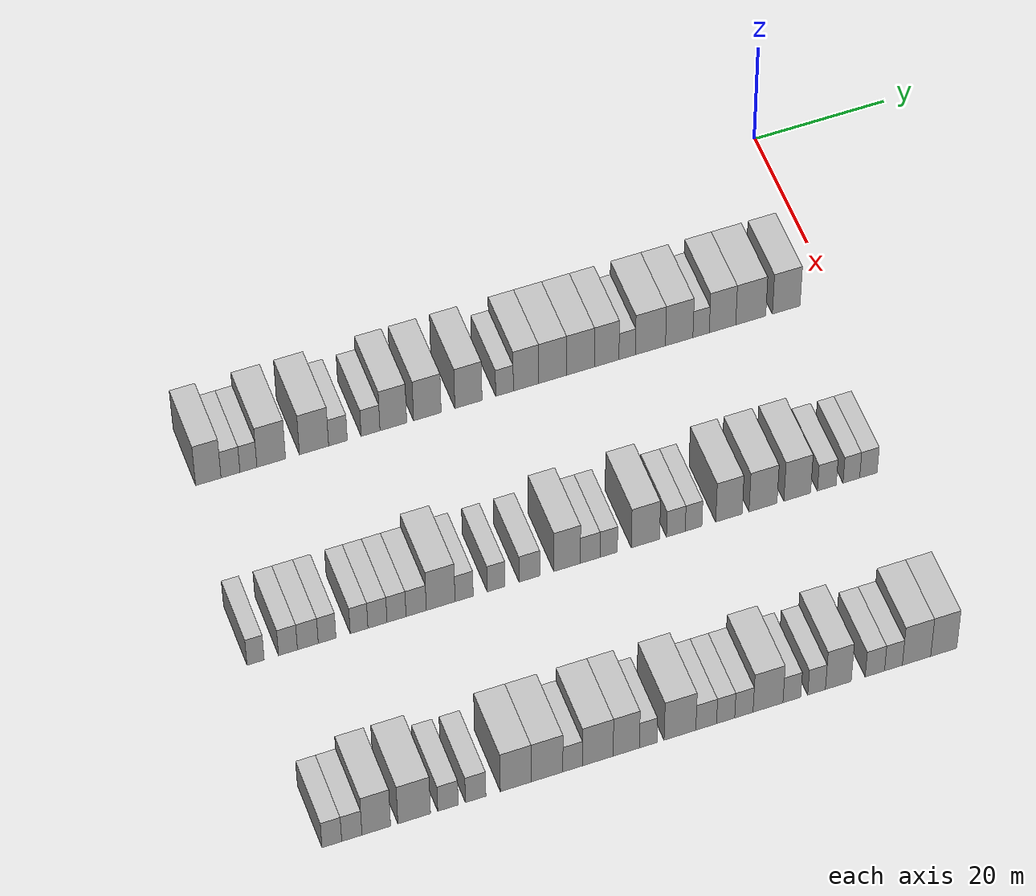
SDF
<sdf version="1.6">
 <world name="default">
  <model name="building_50">
   <static>1</static>
   <pose>25.0000 -91.5804 0 0.000000 0.000000 0.000000</pose>
   <link name="link">
    <pose>0 0 4.50 0 0 0</pose>
    <collision name="collision"><geometry><box><size>10.0000 3.6291 9.0000</size></box></geometry></collision>
    <visual name="visual">
     <cast_shadows>0</cast_shadows>
     <geometry><box><size>10.0000 3.6291 9.0000</size></box></geometry>
     <material>
      <script>
       <uri>model://HANNAS_wall/materials/scripts</uri>
       <uri>model://HANNAS_wall/materials/textures</uri>
       <name>vrc/HANNAS_wall</name>
      </script>
     </material>
    </visual>
   </link>
  </model>
  <model name="building_51">
   <static>1</static>
   <pose>25.0000 -88.4099 0 0.000000 0.000000 0.000000</pose>
   <link name="link">
    <pose>0 0 3.00 0 0 0</pose>
    <collision name="collision"><geometry><box><size>10.0000 2.7119 6.0000</size></box></geometry></collision>
    <visual name="visual">
     <cast_shadows>0</cast_shadows>
     <geometry><box><size>10.0000 2.7119 6.0000</size></box></geometry>
     <material>
      <script>
       <uri>model://HANNAS_wall/materials/scripts</uri>
       <uri>model://HANNAS_wall/materials/textures</uri>
       <name>vrc/HANNAS_wall</name>
      </script>
     </material>
    </visual>
   </link>
  </model>
  <model name="building_52">
   <static>1</static>
   <pose>25.0000 -85.8436 0 0.000000 0.000000 0.000000</pose>
   <link name="link">
    <pose>0 0 3.00 0 0 0</pose>
    <collision name="collision"><geometry><box><size>10.0000 2.4205 6.0000</size></box></geometry></collision>
    <visual name="visual">
     <cast_shadows>0</cast_shadows>
     <geometry><box><size>10.0000 2.4205 6.0000</size></box></geometry>
     <material>
      <script>
       <uri>model://HANNAS_wall/materials/scripts</uri>
       <uri>model://HANNAS_wall/materials/textures</uri>
       <name>vrc/HANNAS_wall</name>
      </script>
     </material>
    </visual>
   </link>
  </model>
  <model name="building_53">
   <static>1</static>
   <pose>25.0000 -82.5803 0 0.000000 0.000000 0.000000</pose>
   <link name="link">
    <pose>0 0 4.50 0 0 0</pose>
    <collision name="collision"><geometry><box><size>10.0000 4.1062 9.0000</size></box></geometry></collision>
    <visual name="visual">
     <cast_shadows>0</cast_shadows>
     <geometry><box><size>10.0000 4.1062 9.0000</size></box></geometry>
     <material>
      <script>
       <uri>model://HANNAS_wall/materials/scripts</uri>
       <uri>model://HANNAS_wall/materials/textures</uri>
       <name>vrc/HANNAS_wall</name>
      </script>
     </material>
    </visual>
   </link>
  </model>
  <model name="building_54">
   <static>1</static>
   <pose>25.0000 -76.4303 0 0.000000 0.000000 0.000000</pose>
   <link name="link">
    <pose>0 0 4.50 0 0 0</pose>
    <collision name="collision"><geometry><box><size>10.0000 4.1938 9.0000</size></box></geometry></collision>
    <visual name="visual">
     <cast_shadows>0</cast_shadows>
     <geometry><box><size>10.0000 4.1938 9.0000</size></box></geometry>
     <material>
      <script>
       <uri>model://HANNAS_wall/materials/scripts</uri>
       <uri>model://HANNAS_wall/materials/textures</uri>
       <name>vrc/HANNAS_wall</name>
      </script>
     </material>
    </visual>
   </link>
  </model>
  <model name="building_55">
   <static>1</static>
   <pose>25.0000 -72.9866 0 0.000000 0.000000 0.000000</pose>
   <link name="link">
    <pose>0 0 3.00 0 0 0</pose>
    <collision name="collision"><geometry><box><size>10.0000 2.6935 6.0000</size></box></geometry></collision>
    <visual name="visual">
     <cast_shadows>0</cast_shadows>
     <geometry><box><size>10.0000 2.6935 6.0000</size></box></geometry>
     <material>
      <script>
       <uri>model://HANNAS_wall/materials/scripts</uri>
       <uri>model://HANNAS_wall/materials/textures</uri>
       <name>vrc/HANNAS_wall</name>
      </script>
     </material>
    </visual>
   </link>
  </model>
  <model name="building_56">
   <static>1</static>
   <pose>25.0000 -68.2763 0 0.000000 0.000000 0.000000</pose>
   <link name="link">
    <pose>0 0 3.00 0 0 0</pose>
    <collision name="collision"><geometry><box><size>10.0000 2.7271 6.0000</size></box></geometry></collision>
    <visual name="visual">
     <cast_shadows>0</cast_shadows>
     <geometry><box><size>10.0000 2.7271 6.0000</size></box></geometry>
     <material>
      <script>
       <uri>model://HANNAS_wall/materials/scripts</uri>
       <uri>model://HANNAS_wall/materials/textures</uri>
       <name>vrc/HANNAS_wall</name>
      </script>
     </material>
    </visual>
   </link>
  </model>
  <model name="building_57">
   <static>1</static>
   <pose>25.0000 -64.9785 0 0.000000 0.000000 0.000000</pose>
   <link name="link">
    <pose>0 0 4.50 0 0 0</pose>
    <collision name="collision"><geometry><box><size>10.0000 3.8686 9.0000</size></box></geometry></collision>
    <visual name="visual">
     <cast_shadows>0</cast_shadows>
     <geometry><box><size>10.0000 3.8686 9.0000</size></box></geometry>
     <material>
      <script>
       <uri>model://HANNAS_wall/materials/scripts</uri>
       <uri>model://HANNAS_wall/materials/textures</uri>
       <name>vrc/HANNAS_wall</name>
      </script>
     </material>
    </visual>
   </link>
  </model>
  <model name="building_58">
   <static>1</static>
   <pose>25.0000 -60.0422 0 0.000000 0.000000 0.000000</pose>
   <link name="link">
    <pose>0 0 4.50 0 0 0</pose>
    <collision name="collision"><geometry><box><size>10.0000 4.0040 9.0000</size></box></geometry></collision>
    <visual name="visual">
     <cast_shadows>0</cast_shadows>
     <geometry><box><size>10.0000 4.0040 9.0000</size></box></geometry>
     <material>
      <script>
       <uri>model://HANNAS_wall/materials/scripts</uri>
       <uri>model://HANNAS_wall/materials/textures</uri>
       <name>vrc/HANNAS_wall</name>
      </script>
     </material>
    </visual>
   </link>
  </model>
  <model name="building_59">
   <static>1</static>
   <pose>25.0000 -54.0618 0 0.000000 0.000000 0.000000</pose>
   <link name="link">
    <pose>0 0 4.50 0 0 0</pose>
    <collision name="collision"><geometry><box><size>10.0000 3.9568 9.0000</size></box></geometry></collision>
    <visual name="visual">
     <cast_shadows>0</cast_shadows>
     <geometry><box><size>10.0000 3.9568 9.0000</size></box></geometry>
     <material>
      <script>
       <uri>model://HANNAS_wall/materials/scripts</uri>
       <uri>model://HANNAS_wall/materials/textures</uri>
       <name>vrc/HANNAS_wall</name>
      </script>
     </material>
    </visual>
   </link>
  </model>
  <model name="building_60">
   <static>1</static>
   <pose>25.0000 -48.7931 0 0.000000 0.000000 0.000000</pose>
   <link name="link">
    <pose>0 0 3.00 0 0 0</pose>
    <collision name="collision"><geometry><box><size>10.0000 2.5806 6.0000</size></box></geometry></collision>
    <visual name="visual">
     <cast_shadows>0</cast_shadows>
     <geometry><box><size>10.0000 2.5806 6.0000</size></box></geometry>
     <material>
      <script>
       <uri>model://HANNAS_wall/materials/scripts</uri>
       <uri>model://HANNAS_wall/materials/textures</uri>
       <name>vrc/HANNAS_wall</name>
      </script>
     </material>
    </visual>
   </link>
  </model>
  <model name="building_61">
   <static>1</static>
   <pose>25.0000 -45.6445 0 0.000000 0.000000 0.000000</pose>
   <link name="link">
    <pose>0 0 4.50 0 0 0</pose>
    <collision name="collision"><geometry><box><size>10.0000 3.7167 9.0000</size></box></geometry></collision>
    <visual name="visual">
     <cast_shadows>0</cast_shadows>
     <geometry><box><size>10.0000 3.7167 9.0000</size></box></geometry>
     <material>
      <script>
       <uri>model://HANNAS_wall/materials/scripts</uri>
       <uri>model://HANNAS_wall/materials/textures</uri>
       <name>vrc/HANNAS_wall</name>
      </script>
     </material>
    </visual>
   </link>
  </model>
  <model name="building_62">
   <static>1</static>
   <pose>25.0000 -41.7381 0 0.000000 0.000000 0.000000</pose>
   <link name="link">
    <pose>0 0 4.50 0 0 0</pose>
    <collision name="collision"><geometry><box><size>10.0000 4.0960 9.0000</size></box></geometry></collision>
    <visual name="visual">
     <cast_shadows>0</cast_shadows>
     <geometry><box><size>10.0000 4.0960 9.0000</size></box></geometry>
     <material>
      <script>
       <uri>model://HANNAS_wall/materials/scripts</uri>
       <uri>model://HANNAS_wall/materials/textures</uri>
       <name>vrc/HANNAS_wall</name>
      </script>
     </material>
    </visual>
   </link>
  </model>
  <model name="building_63">
   <static>1</static>
   <pose>25.0000 -37.6534 0 0.000000 0.000000 0.000000</pose>
   <link name="link">
    <pose>0 0 4.50 0 0 0</pose>
    <collision name="collision"><geometry><box><size>10.0000 4.0736 9.0000</size></box></geometry></collision>
    <visual name="visual">
     <cast_shadows>0</cast_shadows>
     <geometry><box><size>10.0000 4.0736 9.0000</size></box></geometry>
     <material>
      <script>
       <uri>model://HANNAS_wall/materials/scripts</uri>
       <uri>model://HANNAS_wall/materials/textures</uri>
       <name>vrc/HANNAS_wall</name>
      </script>
     </material>
    </visual>
   </link>
  </model>
  <model name="building_64">
   <static>1</static>
   <pose>25.0000 -33.8001 0 0.000000 0.000000 0.000000</pose>
   <link name="link">
    <pose>0 0 4.50 0 0 0</pose>
    <collision name="collision"><geometry><box><size>10.0000 3.6331 9.0000</size></box></geometry></collision>
    <visual name="visual">
     <cast_shadows>0</cast_shadows>
     <geometry><box><size>10.0000 3.6331 9.0000</size></box></geometry>
     <material>
      <script>
       <uri>model://HANNAS_wall/materials/scripts</uri>
       <uri>model://HANNAS_wall/materials/textures</uri>
       <name>vrc/HANNAS_wall</name>
      </script>
     </material>
    </visual>
   </link>
  </model>
  <model name="building_65">
   <static>1</static>
   <pose>25.0000 -30.7727 0 0.000000 0.000000 0.000000</pose>
   <link name="link">
    <pose>0 0 3.00 0 0 0</pose>
    <collision name="collision"><geometry><box><size>10.0000 2.4218 6.0000</size></box></geometry></collision>
    <visual name="visual">
     <cast_shadows>0</cast_shadows>
     <geometry><box><size>10.0000 2.4218 6.0000</size></box></geometry>
     <material>
      <script>
       <uri>model://HANNAS_wall/materials/scripts</uri>
       <uri>model://HANNAS_wall/materials/textures</uri>
       <name>vrc/HANNAS_wall</name>
      </script>
     </material>
    </visual>
   </link>
  </model>
  <model name="building_66">
   <static>1</static>
   <pose>25.0000 -27.3282 0 0.000000 0.000000 0.000000</pose>
   <link name="link">
    <pose>0 0 4.50 0 0 0</pose>
    <collision name="collision"><geometry><box><size>10.0000 4.4672 9.0000</size></box></geometry></collision>
    <visual name="visual">
     <cast_shadows>0</cast_shadows>
     <geometry><box><size>10.0000 4.4672 9.0000</size></box></geometry>
     <material>
      <script>
       <uri>model://HANNAS_wall/materials/scripts</uri>
       <uri>model://HANNAS_wall/materials/textures</uri>
       <name>vrc/HANNAS_wall</name>
      </script>
     </material>
    </visual>
   </link>
  </model>
  <model name="building_67">
   <static>1</static>
   <pose>25.0000 -23.0591 0 0.000000 0.000000 0.000000</pose>
   <link name="link">
    <pose>0 0 4.50 0 0 0</pose>
    <collision name="collision"><geometry><box><size>10.0000 4.0710 9.0000</size></box></geometry></collision>
    <visual name="visual">
     <cast_shadows>0</cast_shadows>
     <geometry><box><size>10.0000 4.0710 9.0000</size></box></geometry>
     <material>
      <script>
       <uri>model://HANNAS_wall/materials/scripts</uri>
       <uri>model://HANNAS_wall/materials/textures</uri>
       <name>vrc/HANNAS_wall</name>
      </script>
     </material>
    </visual>
   </link>
  </model>
  <model name="building_68">
   <static>1</static>
   <pose>25.0000 -19.8102 0 0.000000 0.000000 0.000000</pose>
   <link name="link">
    <pose>0 0 3.00 0 0 0</pose>
    <collision name="collision"><geometry><box><size>10.0000 2.4268 6.0000</size></box></geometry></collision>
    <visual name="visual">
     <cast_shadows>0</cast_shadows>
     <geometry><box><size>10.0000 2.4268 6.0000</size></box></geometry>
     <material>
      <script>
       <uri>model://HANNAS_wall/materials/scripts</uri>
       <uri>model://HANNAS_wall/materials/textures</uri>
       <name>vrc/HANNAS_wall</name>
      </script>
     </material>
    </visual>
   </link>
  </model>
  <model name="building_69">
   <static>1</static>
   <pose>25.0000 -16.6243 0 0.000000 0.000000 0.000000</pose>
   <link name="link">
    <pose>0 0 4.50 0 0 0</pose>
    <collision name="collision"><geometry><box><size>10.0000 3.9450 9.0000</size></box></geometry></collision>
    <visual name="visual">
     <cast_shadows>0</cast_shadows>
     <geometry><box><size>10.0000 3.9450 9.0000</size></box></geometry>
     <material>
      <script>
       <uri>model://HANNAS_wall/materials/scripts</uri>
       <uri>model://HANNAS_wall/materials/textures</uri>
       <name>vrc/HANNAS_wall</name>
      </script>
     </material>
    </visual>
   </link>
  </model>
  <model name="building_70">
   <static>1</static>
   <pose>25.0000 -12.4088 0 0.000000 0.000000 0.000000</pose>
   <link name="link">
    <pose>0 0 4.50 0 0 0</pose>
    <collision name="collision"><geometry><box><size>10.0000 4.4858 9.0000</size></box></geometry></collision>
    <visual name="visual">
     <cast_shadows>0</cast_shadows>
     <geometry><box><size>10.0000 4.4858 9.0000</size></box></geometry>
     <material>
      <script>
       <uri>model://HANNAS_wall/materials/scripts</uri>
       <uri>model://HANNAS_wall/materials/textures</uri>
       <name>vrc/HANNAS_wall</name>
      </script>
     </material>
    </visual>
   </link>
  </model>
  <model name="building_71">
   <static>1</static>
   <pose>25.0000 -7.0969 0 0.000000 0.000000 0.000000</pose>
   <link name="link">
    <pose>0 0 4.50 0 0 0</pose>
    <collision name="collision"><geometry><box><size>10.0000 4.1381 9.0000</size></box></geometry></collision>
    <visual name="visual">
     <cast_shadows>0</cast_shadows>
     <geometry><box><size>10.0000 4.1381 9.0000</size></box></geometry>
     <material>
      <script>
       <uri>model://HANNAS_wall/materials/scripts</uri>
       <uri>model://HANNAS_wall/materials/textures</uri>
       <name>vrc/HANNAS_wall</name>
      </script>
     </material>
    </visual>
   </link>
  </model>
  <model name="building_177">
   <static>1</static>
   <pose>55.0000 -94.6905 0 0.000000 0.000000 0.000000</pose>
   <link name="link">
    <pose>0 0 3.00 0 0 0</pose>
    <collision name="collision"><geometry><box><size>10.0000 2.4018 6.0000</size></box></geometry></collision>
    <visual name="visual">
     <cast_shadows>0</cast_shadows>
     <geometry><box><size>10.0000 2.4018 6.0000</size></box></geometry>
     <material>
      <script>
       <uri>model://HANNAS_wall/materials/scripts</uri>
       <uri>model://HANNAS_wall/materials/textures</uri>
       <name>vrc/HANNAS_wall</name>
      </script>
     </material>
    </visual>
   </link>
  </model>
  <model name="building_178">
   <static>1</static>
   <pose>55.0000 -90.1661 0 0.000000 0.000000 0.000000</pose>
   <link name="link">
    <pose>0 0 3.00 0 0 0</pose>
    <collision name="collision"><geometry><box><size>10.0000 2.6470 6.0000</size></box></geometry></collision>
    <visual name="visual">
     <cast_shadows>0</cast_shadows>
     <geometry><box><size>10.0000 2.6470 6.0000</size></box></geometry>
     <material>
      <script>
       <uri>model://HANNAS_wall/materials/scripts</uri>
       <uri>model://HANNAS_wall/materials/textures</uri>
       <name>vrc/HANNAS_wall</name>
      </script>
     </material>
    </visual>
   </link>
  </model>
  <model name="building_179">
   <static>1</static>
   <pose>55.0000 -87.3891 0 0.000000 0.000000 0.000000</pose>
   <link name="link">
    <pose>0 0 3.00 0 0 0</pose>
    <collision name="collision"><geometry><box><size>10.0000 2.9071 6.0000</size></box></geometry></collision>
    <visual name="visual">
     <cast_shadows>0</cast_shadows>
     <geometry><box><size>10.0000 2.9071 6.0000</size></box></geometry>
     <material>
      <script>
       <uri>model://HANNAS_wall/materials/scripts</uri>
       <uri>model://HANNAS_wall/materials/textures</uri>
       <name>vrc/HANNAS_wall</name>
      </script>
     </material>
    </visual>
   </link>
  </model>
  <model name="building_180">
   <static>1</static>
   <pose>55.0000 -84.6912 0 0.000000 0.000000 0.000000</pose>
   <link name="link">
    <pose>0 0 3.00 0 0 0</pose>
    <collision name="collision"><geometry><box><size>10.0000 2.4886 6.0000</size></box></geometry></collision>
    <visual name="visual">
     <cast_shadows>0</cast_shadows>
     <geometry><box><size>10.0000 2.4886 6.0000</size></box></geometry>
     <material>
      <script>
       <uri>model://HANNAS_wall/materials/scripts</uri>
       <uri>model://HANNAS_wall/materials/textures</uri>
       <name>vrc/HANNAS_wall</name>
      </script>
     </material>
    </visual>
   </link>
  </model>
  <model name="building_181">
   <static>1</static>
   <pose>55.0000 -80.2026 0 0.000000 0.000000 0.000000</pose>
   <link name="link">
    <pose>0 0 3.00 0 0 0</pose>
    <collision name="collision"><geometry><box><size>10.0000 2.4885 6.0000</size></box></geometry></collision>
    <visual name="visual">
     <cast_shadows>0</cast_shadows>
     <geometry><box><size>10.0000 2.4885 6.0000</size></box></geometry>
     <material>
      <script>
       <uri>model://HANNAS_wall/materials/scripts</uri>
       <uri>model://HANNAS_wall/materials/textures</uri>
       <name>vrc/HANNAS_wall</name>
      </script>
     </material>
    </visual>
   </link>
  </model>
  <model name="building_182">
   <static>1</static>
   <pose>55.0000 -77.6152 0 0.000000 0.000000 0.000000</pose>
   <link name="link">
    <pose>0 0 3.00 0 0 0</pose>
    <collision name="collision"><geometry><box><size>10.0000 2.6863 6.0000</size></box></geometry></collision>
    <visual name="visual">
     <cast_shadows>0</cast_shadows>
     <geometry><box><size>10.0000 2.6863 6.0000</size></box></geometry>
     <material>
      <script>
       <uri>model://HANNAS_wall/materials/scripts</uri>
       <uri>model://HANNAS_wall/materials/textures</uri>
       <name>vrc/HANNAS_wall</name>
      </script>
     </material>
    </visual>
   </link>
  </model>
  <model name="building_183">
   <static>1</static>
   <pose>55.0000 -74.9311 0 0.000000 0.000000 0.000000</pose>
   <link name="link">
    <pose>0 0 3.00 0 0 0</pose>
    <collision name="collision"><geometry><box><size>10.0000 2.6820 6.0000</size></box></geometry></collision>
    <visual name="visual">
     <cast_shadows>0</cast_shadows>
     <geometry><box><size>10.0000 2.6820 6.0000</size></box></geometry>
     <material>
      <script>
       <uri>model://HANNAS_wall/materials/scripts</uri>
       <uri>model://HANNAS_wall/materials/textures</uri>
       <name>vrc/HANNAS_wall</name>
      </script>
     </material>
    </visual>
   </link>
  </model>
  <model name="building_184">
   <static>1</static>
   <pose>55.0000 -72.1586 0 0.000000 0.000000 0.000000</pose>
   <link name="link">
    <pose>0 0 3.00 0 0 0</pose>
    <collision name="collision"><geometry><box><size>10.0000 2.8630 6.0000</size></box></geometry></collision>
    <visual name="visual">
     <cast_shadows>0</cast_shadows>
     <geometry><box><size>10.0000 2.8630 6.0000</size></box></geometry>
     <material>
      <script>
       <uri>model://HANNAS_wall/materials/scripts</uri>
       <uri>model://HANNAS_wall/materials/textures</uri>
       <name>vrc/HANNAS_wall</name>
      </script>
     </material>
    </visual>
   </link>
  </model>
  <model name="building_185">
   <static>1</static>
   <pose>55.0000 -68.6922 0 0.000000 0.000000 0.000000</pose>
   <link name="link">
    <pose>0 0 4.50 0 0 0</pose>
    <collision name="collision"><geometry><box><size>10.0000 4.0698 9.0000</size></box></geometry></collision>
    <visual name="visual">
     <cast_shadows>0</cast_shadows>
     <geometry><box><size>10.0000 4.0698 9.0000</size></box></geometry>
     <material>
      <script>
       <uri>model://HANNAS_wall/materials/scripts</uri>
       <uri>model://HANNAS_wall/materials/textures</uri>
       <name>vrc/HANNAS_wall</name>
      </script>
     </material>
    </visual>
   </link>
  </model>
  <model name="building_186">
   <static>1</static>
   <pose>55.0000 -65.3689 0 0.000000 0.000000 0.000000</pose>
   <link name="link">
    <pose>0 0 3.00 0 0 0</pose>
    <collision name="collision"><geometry><box><size>10.0000 2.5769 6.0000</size></box></geometry></collision>
    <visual name="visual">
     <cast_shadows>0</cast_shadows>
     <geometry><box><size>10.0000 2.5769 6.0000</size></box></geometry>
     <material>
      <script>
       <uri>model://HANNAS_wall/materials/scripts</uri>
       <uri>model://HANNAS_wall/materials/textures</uri>
       <name>vrc/HANNAS_wall</name>
      </script>
     </material>
    </visual>
   </link>
  </model>
  <model name="building_187">
   <static>1</static>
   <pose>55.0000 -60.8189 0 0.000000 0.000000 0.000000</pose>
   <link name="link">
    <pose>0 0 3.00 0 0 0</pose>
    <collision name="collision"><geometry><box><size>10.0000 2.5231 6.0000</size></box></geometry></collision>
    <visual name="visual">
     <cast_shadows>0</cast_shadows>
     <geometry><box><size>10.0000 2.5231 6.0000</size></box></geometry>
     <material>
      <script>
       <uri>model://HANNAS_wall/materials/scripts</uri>
       <uri>model://HANNAS_wall/materials/textures</uri>
       <name>vrc/HANNAS_wall</name>
      </script>
     </material>
    </visual>
   </link>
  </model>
  <model name="building_188">
   <static>1</static>
   <pose>55.0000 -56.0754 0 0.000000 0.000000 0.000000</pose>
   <link name="link">
    <pose>0 0 3.00 0 0 0</pose>
    <collision name="collision"><geometry><box><size>10.0000 2.9638 6.0000</size></box></geometry></collision>
    <visual name="visual">
     <cast_shadows>0</cast_shadows>
     <geometry><box><size>10.0000 2.9638 6.0000</size></box></geometry>
     <material>
      <script>
       <uri>model://HANNAS_wall/materials/scripts</uri>
       <uri>model://HANNAS_wall/materials/textures</uri>
       <name>vrc/HANNAS_wall</name>
      </script>
     </material>
    </visual>
   </link>
  </model>
  <model name="building_189">
   <static>1</static>
   <pose>55.0000 -50.6894 0 0.000000 0.000000 0.000000</pose>
   <link name="link">
    <pose>0 0 4.50 0 0 0</pose>
    <collision name="collision"><geometry><box><size>10.0000 3.8082 9.0000</size></box></geometry></collision>
    <visual name="visual">
     <cast_shadows>0</cast_shadows>
     <geometry><box><size>10.0000 3.8082 9.0000</size></box></geometry>
     <material>
      <script>
       <uri>model://HANNAS_wall/materials/scripts</uri>
       <uri>model://HANNAS_wall/materials/textures</uri>
       <name>vrc/HANNAS_wall</name>
      </script>
     </material>
    </visual>
   </link>
  </model>
  <model name="building_190">
   <static>1</static>
   <pose>55.0000 -47.3903 0 0.000000 0.000000 0.000000</pose>
   <link name="link">
    <pose>0 0 3.00 0 0 0</pose>
    <collision name="collision"><geometry><box><size>10.0000 2.7900 6.0000</size></box></geometry></collision>
    <visual name="visual">
     <cast_shadows>0</cast_shadows>
     <geometry><box><size>10.0000 2.7900 6.0000</size></box></geometry>
     <material>
      <script>
       <uri>model://HANNAS_wall/materials/scripts</uri>
       <uri>model://HANNAS_wall/materials/textures</uri>
       <name>vrc/HANNAS_wall</name>
      </script>
     </material>
    </visual>
   </link>
  </model>
  <model name="building_191">
   <static>1</static>
   <pose>55.0000 -44.7407 0 0.000000 0.000000 0.000000</pose>
   <link name="link">
    <pose>0 0 3.00 0 0 0</pose>
    <collision name="collision"><geometry><box><size>10.0000 2.5093 6.0000</size></box></geometry></collision>
    <visual name="visual">
     <cast_shadows>0</cast_shadows>
     <geometry><box><size>10.0000 2.5093 6.0000</size></box></geometry>
     <material>
      <script>
       <uri>model://HANNAS_wall/materials/scripts</uri>
       <uri>model://HANNAS_wall/materials/textures</uri>
       <name>vrc/HANNAS_wall</name>
      </script>
     </material>
    </visual>
   </link>
  </model>
  <model name="building_192">
   <static>1</static>
   <pose>55.0000 -39.4513 0 0.000000 0.000000 0.000000</pose>
   <link name="link">
    <pose>0 0 4.50 0 0 0</pose>
    <collision name="collision"><geometry><box><size>10.0000 4.0694 9.0000</size></box></geometry></collision>
    <visual name="visual">
     <cast_shadows>0</cast_shadows>
     <geometry><box><size>10.0000 4.0694 9.0000</size></box></geometry>
     <material>
      <script>
       <uri>model://HANNAS_wall/materials/scripts</uri>
       <uri>model://HANNAS_wall/materials/textures</uri>
       <name>vrc/HANNAS_wall</name>
      </script>
     </material>
    </visual>
   </link>
  </model>
  <model name="building_193">
   <static>1</static>
   <pose>55.0000 -35.0640 0 0.000000 0.000000 0.000000</pose>
   <link name="link">
    <pose>0 0 3.00 0 0 0</pose>
    <collision name="collision"><geometry><box><size>10.0000 2.7053 6.0000</size></box></geometry></collision>
    <visual name="visual">
     <cast_shadows>0</cast_shadows>
     <geometry><box><size>10.0000 2.7053 6.0000</size></box></geometry>
     <material>
      <script>
       <uri>model://HANNAS_wall/materials/scripts</uri>
       <uri>model://HANNAS_wall/materials/textures</uri>
       <name>vrc/HANNAS_wall</name>
      </script>
     </material>
    </visual>
   </link>
  </model>
  <model name="building_194">
   <static>1</static>
   <pose>55.0000 -32.5052 0 0.000000 0.000000 0.000000</pose>
   <link name="link">
    <pose>0 0 3.00 0 0 0</pose>
    <collision name="collision"><geometry><box><size>10.0000 2.4123 6.0000</size></box></geometry></collision>
    <visual name="visual">
     <cast_shadows>0</cast_shadows>
     <geometry><box><size>10.0000 2.4123 6.0000</size></box></geometry>
     <material>
      <script>
       <uri>model://HANNAS_wall/materials/scripts</uri>
       <uri>model://HANNAS_wall/materials/textures</uri>
       <name>vrc/HANNAS_wall</name>
      </script>
     </material>
    </visual>
   </link>
  </model>
  <model name="building_195">
   <static>1</static>
   <pose>55.0000 -27.3815 0 0.000000 0.000000 0.000000</pose>
   <link name="link">
    <pose>0 0 4.50 0 0 0</pose>
    <collision name="collision"><geometry><box><size>10.0000 3.8351 9.0000</size></box></geometry></collision>
    <visual name="visual">
     <cast_shadows>0</cast_shadows>
     <geometry><box><size>10.0000 3.8351 9.0000</size></box></geometry>
     <material>
      <script>
       <uri>model://HANNAS_wall/materials/scripts</uri>
       <uri>model://HANNAS_wall/materials/textures</uri>
       <name>vrc/HANNAS_wall</name>
      </script>
     </material>
    </visual>
   </link>
  </model>
  <model name="building_196">
   <static>1</static>
   <pose>55.0000 -22.4296 0 0.000000 0.000000 0.000000</pose>
   <link name="link">
    <pose>0 0 4.50 0 0 0</pose>
    <collision name="collision"><geometry><box><size>10.0000 4.0686 9.0000</size></box></geometry></collision>
    <visual name="visual">
     <cast_shadows>0</cast_shadows>
     <geometry><box><size>10.0000 4.0686 9.0000</size></box></geometry>
     <material>
      <script>
       <uri>model://HANNAS_wall/materials/scripts</uri>
       <uri>model://HANNAS_wall/materials/textures</uri>
       <name>vrc/HANNAS_wall</name>
      </script>
     </material>
    </visual>
   </link>
  </model>
  <model name="building_197">
   <static>1</static>
   <pose>55.0000 -17.4412 0 0.000000 0.000000 0.000000</pose>
   <link name="link">
    <pose>0 0 4.50 0 0 0</pose>
    <collision name="collision"><geometry><box><size>10.0000 3.9081 9.0000</size></box></geometry></collision>
    <visual name="visual">
     <cast_shadows>0</cast_shadows>
     <geometry><box><size>10.0000 3.9081 9.0000</size></box></geometry>
     <material>
      <script>
       <uri>model://HANNAS_wall/materials/scripts</uri>
       <uri>model://HANNAS_wall/materials/textures</uri>
       <name>vrc/HANNAS_wall</name>
      </script>
     </material>
    </visual>
   </link>
  </model>
  <model name="building_198">
   <static>1</static>
   <pose>55.0000 -13.1148 0 0.000000 0.000000 0.000000</pose>
   <link name="link">
    <pose>0 0 3.00 0 0 0</pose>
    <collision name="collision"><geometry><box><size>10.0000 2.7448 6.0000</size></box></geometry></collision>
    <visual name="visual">
     <cast_shadows>0</cast_shadows>
     <geometry><box><size>10.0000 2.7448 6.0000</size></box></geometry>
     <material>
      <script>
       <uri>model://HANNAS_wall/materials/scripts</uri>
       <uri>model://HANNAS_wall/materials/textures</uri>
       <name>vrc/HANNAS_wall</name>
      </script>
     </material>
    </visual>
   </link>
  </model>
  <model name="building_199">
   <static>1</static>
   <pose>55.0000 -9.5215 0 0.000000 0.000000 0.000000</pose>
   <link name="link">
    <pose>0 0 3.00 0 0 0</pose>
    <collision name="collision"><geometry><box><size>10.0000 2.4418 6.0000</size></box></geometry></collision>
    <visual name="visual">
     <cast_shadows>0</cast_shadows>
     <geometry><box><size>10.0000 2.4418 6.0000</size></box></geometry>
     <material>
      <script>
       <uri>model://HANNAS_wall/materials/scripts</uri>
       <uri>model://HANNAS_wall/materials/textures</uri>
       <name>vrc/HANNAS_wall</name>
      </script>
     </material>
    </visual>
   </link>
  </model>
  <model name="building_200">
   <static>1</static>
   <pose>55.0000 -7.0175 0 0.000000 0.000000 0.000000</pose>
   <link name="link">
    <pose>0 0 3.00 0 0 0</pose>
    <collision name="collision"><geometry><box><size>10.0000 2.5663 6.0000</size></box></geometry></collision>
    <visual name="visual">
     <cast_shadows>0</cast_shadows>
     <geometry><box><size>10.0000 2.5663 6.0000</size></box></geometry>
     <material>
      <script>
       <uri>model://HANNAS_wall/materials/scripts</uri>
       <uri>model://HANNAS_wall/materials/textures</uri>
       <name>vrc/HANNAS_wall</name>
      </script>
     </material>
    </visual>
   </link>
  </model>
  <model name="building_323">
   <static>1</static>
   <pose>85.0000 -94.1857 0 0.000000 0.000000 0.000000</pose>
   <link name="link">
    <pose>0 0 3.00 0 0 0</pose>
    <collision name="collision"><geometry><box><size>10.0000 2.6888 6.0000</size></box></geometry></collision>
    <visual name="visual">
     <cast_shadows>0</cast_shadows>
     <geometry><box><size>10.0000 2.6888 6.0000</size></box></geometry>
     <material>
      <script>
       <uri>model://HANNAS_wall/materials/scripts</uri>
       <uri>model://HANNAS_wall/materials/textures</uri>
       <name>vrc/HANNAS_wall</name>
      </script>
     </material>
    </visual>
   </link>
  </model>
  <model name="building_324">
   <static>1</static>
   <pose>85.0000 -91.4584 0 0.000000 0.000000 0.000000</pose>
   <link name="link">
    <pose>0 0 3.00 0 0 0</pose>
    <collision name="collision"><geometry><box><size>10.0000 2.7659 6.0000</size></box></geometry></collision>
    <visual name="visual">
     <cast_shadows>0</cast_shadows>
     <geometry><box><size>10.0000 2.7659 6.0000</size></box></geometry>
     <material>
      <script>
       <uri>model://HANNAS_wall/materials/scripts</uri>
       <uri>model://HANNAS_wall/materials/textures</uri>
       <name>vrc/HANNAS_wall</name>
      </script>
     </material>
    </visual>
   </link>
  </model>
  <model name="building_325">
   <static>1</static>
   <pose>85.0000 -88.1161 0 0.000000 0.000000 0.000000</pose>
   <link name="link">
    <pose>0 0 4.50 0 0 0</pose>
    <collision name="collision"><geometry><box><size>10.0000 3.9187 9.0000</size></box></geometry></collision>
    <visual name="visual">
     <cast_shadows>0</cast_shadows>
     <geometry><box><size>10.0000 3.9187 9.0000</size></box></geometry>
     <material>
      <script>
       <uri>model://HANNAS_wall/materials/scripts</uri>
       <uri>model://HANNAS_wall/materials/textures</uri>
       <name>vrc/HANNAS_wall</name>
      </script>
     </material>
    </visual>
   </link>
  </model>
  <model name="building_326">
   <static>1</static>
   <pose>85.0000 -82.9144 0 0.000000 0.000000 0.000000</pose>
   <link name="link">
    <pose>0 0 4.50 0 0 0</pose>
    <collision name="collision"><geometry><box><size>10.0000 4.4847 9.0000</size></box></geometry></collision>
    <visual name="visual">
     <cast_shadows>0</cast_shadows>
     <geometry><box><size>10.0000 4.4847 9.0000</size></box></geometry>
     <material>
      <script>
       <uri>model://HANNAS_wall/materials/scripts</uri>
       <uri>model://HANNAS_wall/materials/textures</uri>
       <name>vrc/HANNAS_wall</name>
      </script>
     </material>
    </visual>
   </link>
  </model>
  <model name="building_327">
   <static>1</static>
   <pose>85.0000 -78.2642 0 0.000000 0.000000 0.000000</pose>
   <link name="link">
    <pose>0 0 3.00 0 0 0</pose>
    <collision name="collision"><geometry><box><size>10.0000 2.8157 6.0000</size></box></geometry></collision>
    <visual name="visual">
     <cast_shadows>0</cast_shadows>
     <geometry><box><size>10.0000 2.8157 6.0000</size></box></geometry>
     <material>
      <script>
       <uri>model://HANNAS_wall/materials/scripts</uri>
       <uri>model://HANNAS_wall/materials/textures</uri>
       <name>vrc/HANNAS_wall</name>
      </script>
     </material>
    </visual>
   </link>
  </model>
  <model name="building_328">
   <static>1</static>
   <pose>85.0000 -74.4460 0 0.000000 0.000000 0.000000</pose>
   <link name="link">
    <pose>0 0 3.00 0 0 0</pose>
    <collision name="collision"><geometry><box><size>10.0000 2.8207 6.0000</size></box></geometry></collision>
    <visual name="visual">
     <cast_shadows>0</cast_shadows>
     <geometry><box><size>10.0000 2.8207 6.0000</size></box></geometry>
     <material>
      <script>
       <uri>model://HANNAS_wall/materials/scripts</uri>
       <uri>model://HANNAS_wall/materials/textures</uri>
       <name>vrc/HANNAS_wall</name>
      </script>
     </material>
    </visual>
   </link>
  </model>
  <model name="building_329">
   <static>1</static>
   <pose>85.0000 -68.8854 0 0.000000 0.000000 0.000000</pose>
   <link name="link">
    <pose>0 0 4.50 0 0 0</pose>
    <collision name="collision"><geometry><box><size>10.0000 4.3006 9.0000</size></box></geometry></collision>
    <visual name="visual">
     <cast_shadows>0</cast_shadows>
     <geometry><box><size>10.0000 4.3006 9.0000</size></box></geometry>
     <material>
      <script>
       <uri>model://HANNAS_wall/materials/scripts</uri>
       <uri>model://HANNAS_wall/materials/textures</uri>
       <name>vrc/HANNAS_wall</name>
      </script>
     </material>
    </visual>
   </link>
  </model>
  <model name="building_330">
   <static>1</static>
   <pose>85.0000 -64.5448 0 0.000000 0.000000 0.000000</pose>
   <link name="link">
    <pose>0 0 4.50 0 0 0</pose>
    <collision name="collision"><geometry><box><size>10.0000 4.3805 9.0000</size></box></geometry></collision>
    <visual name="visual">
     <cast_shadows>0</cast_shadows>
     <geometry><box><size>10.0000 4.3805 9.0000</size></box></geometry>
     <material>
      <script>
       <uri>model://HANNAS_wall/materials/scripts</uri>
       <uri>model://HANNAS_wall/materials/textures</uri>
       <name>vrc/HANNAS_wall</name>
      </script>
     </material>
    </visual>
   </link>
  </model>
  <model name="building_331">
   <static>1</static>
   <pose>85.0000 -61.0035 0 0.000000 0.000000 0.000000</pose>
   <link name="link">
    <pose>0 0 3.00 0 0 0</pose>
    <collision name="collision"><geometry><box><size>10.0000 2.7020 6.0000</size></box></geometry></collision>
    <visual name="visual">
     <cast_shadows>0</cast_shadows>
     <geometry><box><size>10.0000 2.7020 6.0000</size></box></geometry>
     <material>
      <script>
       <uri>model://HANNAS_wall/materials/scripts</uri>
       <uri>model://HANNAS_wall/materials/textures</uri>
       <name>vrc/HANNAS_wall</name>
      </script>
     </material>
    </visual>
   </link>
  </model>
  <model name="building_332">
   <static>1</static>
   <pose>85.0000 -57.5026 0 0.000000 0.000000 0.000000</pose>
   <link name="link">
    <pose>0 0 4.50 0 0 0</pose>
    <collision name="collision"><geometry><box><size>10.0000 4.2998 9.0000</size></box></geometry></collision>
    <visual name="visual">
     <cast_shadows>0</cast_shadows>
     <geometry><box><size>10.0000 4.2998 9.0000</size></box></geometry>
     <material>
      <script>
       <uri>model://HANNAS_wall/materials/scripts</uri>
       <uri>model://HANNAS_wall/materials/textures</uri>
       <name>vrc/HANNAS_wall</name>
      </script>
     </material>
    </visual>
   </link>
  </model>
  <model name="building_333">
   <static>1</static>
   <pose>85.0000 -53.5186 0 0.000000 0.000000 0.000000</pose>
   <link name="link">
    <pose>0 0 4.50 0 0 0</pose>
    <collision name="collision"><geometry><box><size>10.0000 3.6682 9.0000</size></box></geometry></collision>
    <visual name="visual">
     <cast_shadows>0</cast_shadows>
     <geometry><box><size>10.0000 3.6682 9.0000</size></box></geometry>
     <material>
      <script>
       <uri>model://HANNAS_wall/materials/scripts</uri>
       <uri>model://HANNAS_wall/materials/textures</uri>
       <name>vrc/HANNAS_wall</name>
      </script>
     </material>
    </visual>
   </link>
  </model>
  <model name="building_334">
   <static>1</static>
   <pose>85.0000 -50.4526 0 0.000000 0.000000 0.000000</pose>
   <link name="link">
    <pose>0 0 3.00 0 0 0</pose>
    <collision name="collision"><geometry><box><size>10.0000 2.4637 6.0000</size></box></geometry></collision>
    <visual name="visual">
     <cast_shadows>0</cast_shadows>
     <geometry><box><size>10.0000 2.4637 6.0000</size></box></geometry>
     <material>
      <script>
       <uri>model://HANNAS_wall/materials/scripts</uri>
       <uri>model://HANNAS_wall/materials/textures</uri>
       <name>vrc/HANNAS_wall</name>
      </script>
     </material>
    </visual>
   </link>
  </model>
  <model name="building_335">
   <static>1</static>
   <pose>85.0000 -45.9942 0 0.000000 0.000000 0.000000</pose>
   <link name="link">
    <pose>0 0 4.50 0 0 0</pose>
    <collision name="collision"><geometry><box><size>10.0000 4.4532 9.0000</size></box></geometry></collision>
    <visual name="visual">
     <cast_shadows>0</cast_shadows>
     <geometry><box><size>10.0000 4.4532 9.0000</size></box></geometry>
     <material>
      <script>
       <uri>model://HANNAS_wall/materials/scripts</uri>
       <uri>model://HANNAS_wall/materials/textures</uri>
       <name>vrc/HANNAS_wall</name>
      </script>
     </material>
    </visual>
   </link>
  </model>
  <model name="building_336">
   <static>1</static>
   <pose>85.0000 -42.3079 0 0.000000 0.000000 0.000000</pose>
   <link name="link">
    <pose>0 0 3.00 0 0 0</pose>
    <collision name="collision"><geometry><box><size>10.0000 2.9192 6.0000</size></box></geometry></collision>
    <visual name="visual">
     <cast_shadows>0</cast_shadows>
     <geometry><box><size>10.0000 2.9192 6.0000</size></box></geometry>
     <material>
      <script>
       <uri>model://HANNAS_wall/materials/scripts</uri>
       <uri>model://HANNAS_wall/materials/textures</uri>
       <name>vrc/HANNAS_wall</name>
      </script>
     </material>
    </visual>
   </link>
  </model>
  <model name="building_337">
   <static>1</static>
   <pose>85.0000 -39.5658 0 0.000000 0.000000 0.000000</pose>
   <link name="link">
    <pose>0 0 3.00 0 0 0</pose>
    <collision name="collision"><geometry><box><size>10.0000 2.5650 6.0000</size></box></geometry></collision>
    <visual name="visual">
     <cast_shadows>0</cast_shadows>
     <geometry><box><size>10.0000 2.5650 6.0000</size></box></geometry>
     <material>
      <script>
       <uri>model://HANNAS_wall/materials/scripts</uri>
       <uri>model://HANNAS_wall/materials/textures</uri>
       <name>vrc/HANNAS_wall</name>
      </script>
     </material>
    </visual>
   </link>
  </model>
  <model name="building_338">
   <static>1</static>
   <pose>85.0000 -36.9891 0 0.000000 0.000000 0.000000</pose>
   <link name="link">
    <pose>0 0 3.00 0 0 0</pose>
    <collision name="collision"><geometry><box><size>10.0000 2.5882 6.0000</size></box></geometry></collision>
    <visual name="visual">
     <cast_shadows>0</cast_shadows>
     <geometry><box><size>10.0000 2.5882 6.0000</size></box></geometry>
     <material>
      <script>
       <uri>model://HANNAS_wall/materials/scripts</uri>
       <uri>model://HANNAS_wall/materials/textures</uri>
       <name>vrc/HANNAS_wall</name>
      </script>
     </material>
    </visual>
   </link>
  </model>
  <model name="building_339">
   <static>1</static>
   <pose>85.0000 -33.5776 0 0.000000 0.000000 0.000000</pose>
   <link name="link">
    <pose>0 0 4.50 0 0 0</pose>
    <collision name="collision"><geometry><box><size>10.0000 4.2349 9.0000</size></box></geometry></collision>
    <visual name="visual">
     <cast_shadows>0</cast_shadows>
     <geometry><box><size>10.0000 4.2349 9.0000</size></box></geometry>
     <material>
      <script>
       <uri>model://HANNAS_wall/materials/scripts</uri>
       <uri>model://HANNAS_wall/materials/textures</uri>
       <name>vrc/HANNAS_wall</name>
      </script>
     </material>
    </visual>
   </link>
  </model>
  <model name="building_340">
   <static>1</static>
   <pose>85.0000 -30.1986 0 0.000000 0.000000 0.000000</pose>
   <link name="link">
    <pose>0 0 3.00 0 0 0</pose>
    <collision name="collision"><geometry><box><size>10.0000 2.5231 6.0000</size></box></geometry></collision>
    <visual name="visual">
     <cast_shadows>0</cast_shadows>
     <geometry><box><size>10.0000 2.5231 6.0000</size></box></geometry>
     <material>
      <script>
       <uri>model://HANNAS_wall/materials/scripts</uri>
       <uri>model://HANNAS_wall/materials/textures</uri>
       <name>vrc/HANNAS_wall</name>
      </script>
     </material>
    </visual>
   </link>
  </model>
  <model name="building_341">
   <static>1</static>
   <pose>85.0000 -26.6838 0 0.000000 0.000000 0.000000</pose>
   <link name="link">
    <pose>0 0 3.00 0 0 0</pose>
    <collision name="collision"><geometry><box><size>10.0000 2.5064 6.0000</size></box></geometry></collision>
    <visual name="visual">
     <cast_shadows>0</cast_shadows>
     <geometry><box><size>10.0000 2.5064 6.0000</size></box></geometry>
     <material>
      <script>
       <uri>model://HANNAS_wall/materials/scripts</uri>
       <uri>model://HANNAS_wall/materials/textures</uri>
       <name>vrc/HANNAS_wall</name>
      </script>
     </material>
    </visual>
   </link>
  </model>
  <model name="building_342">
   <static>1</static>
   <pose>85.0000 -23.5920 0 0.000000 0.000000 0.000000</pose>
   <link name="link">
    <pose>0 0 4.50 0 0 0</pose>
    <collision name="collision"><geometry><box><size>10.0000 3.6771 9.0000</size></box></geometry></collision>
    <visual name="visual">
     <cast_shadows>0</cast_shadows>
     <geometry><box><size>10.0000 3.6771 9.0000</size></box></geometry>
     <material>
      <script>
       <uri>model://HANNAS_wall/materials/scripts</uri>
       <uri>model://HANNAS_wall/materials/textures</uri>
       <name>vrc/HANNAS_wall</name>
      </script>
     </material>
    </visual>
   </link>
  </model>
  <model name="building_343">
   <static>1</static>
   <pose>85.0000 -18.3738 0 0.000000 0.000000 0.000000</pose>
   <link name="link">
    <pose>0 0 3.00 0 0 0</pose>
    <collision name="collision"><geometry><box><size>10.0000 2.7594 6.0000</size></box></geometry></collision>
    <visual name="visual">
     <cast_shadows>0</cast_shadows>
     <geometry><box><size>10.0000 2.7594 6.0000</size></box></geometry>
     <material>
      <script>
       <uri>model://HANNAS_wall/materials/scripts</uri>
       <uri>model://HANNAS_wall/materials/textures</uri>
       <name>vrc/HANNAS_wall</name>
      </script>
     </material>
    </visual>
   </link>
  </model>
  <model name="building_344">
   <static>1</static>
   <pose>85.0000 -15.7192 0 0.000000 0.000000 0.000000</pose>
   <link name="link">
    <pose>0 0 3.00 0 0 0</pose>
    <collision name="collision"><geometry><box><size>10.0000 2.5498 6.0000</size></box></geometry></collision>
    <visual name="visual">
     <cast_shadows>0</cast_shadows>
     <geometry><box><size>10.0000 2.5498 6.0000</size></box></geometry>
     <material>
      <script>
       <uri>model://HANNAS_wall/materials/scripts</uri>
       <uri>model://HANNAS_wall/materials/textures</uri>
       <name>vrc/HANNAS_wall</name>
      </script>
     </material>
    </visual>
   </link>
  </model>
  <model name="building_345">
   <static>1</static>
   <pose>85.0000 -12.4082 0 0.000000 0.000000 0.000000</pose>
   <link name="link">
    <pose>0 0 4.50 0 0 0</pose>
    <collision name="collision"><geometry><box><size>10.0000 4.0722 9.0000</size></box></geometry></collision>
    <visual name="visual">
     <cast_shadows>0</cast_shadows>
     <geometry><box><size>10.0000 4.0722 9.0000</size></box></geometry>
     <material>
      <script>
       <uri>model://HANNAS_wall/materials/scripts</uri>
       <uri>model://HANNAS_wall/materials/textures</uri>
       <name>vrc/HANNAS_wall</name>
      </script>
     </material>
    </visual>
   </link>
  </model>
  <model name="building_346">
   <static>1</static>
   <pose>85.0000 -8.5018 0 0.000000 0.000000 0.000000</pose>
   <link name="link">
    <pose>0 0 4.50 0 0 0</pose>
    <collision name="collision"><geometry><box><size>10.0000 3.7406 9.0000</size></box></geometry></collision>
    <visual name="visual">
     <cast_shadows>0</cast_shadows>
     <geometry><box><size>10.0000 3.7406 9.0000</size></box></geometry>
     <material>
      <script>
       <uri>model://HANNAS_wall/materials/scripts</uri>
       <uri>model://HANNAS_wall/materials/textures</uri>
       <name>vrc/HANNAS_wall</name>
      </script>
     </material>
    </visual>
   </link>
  </model>
 </world>
</sdf>
